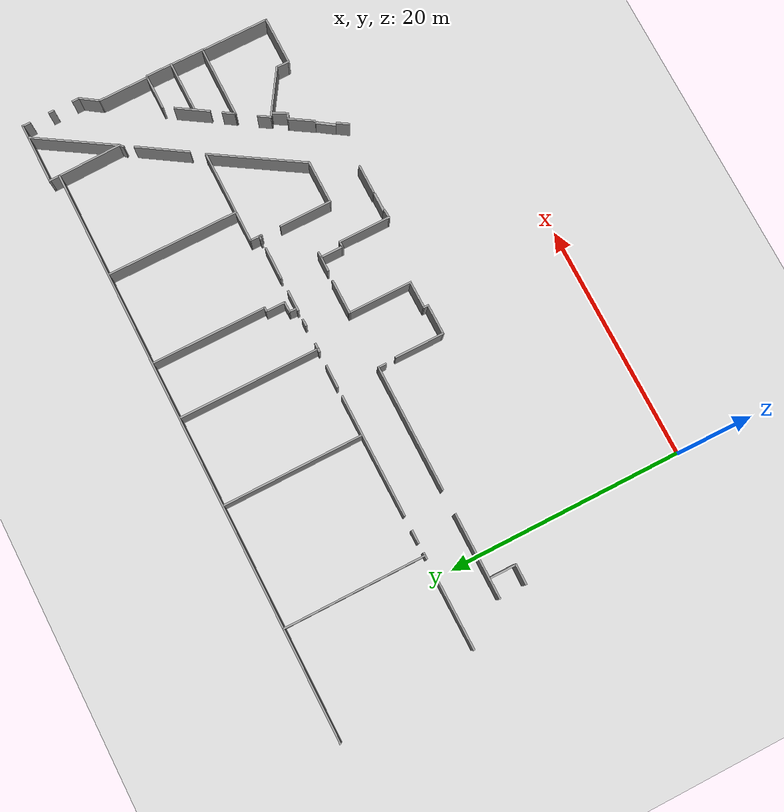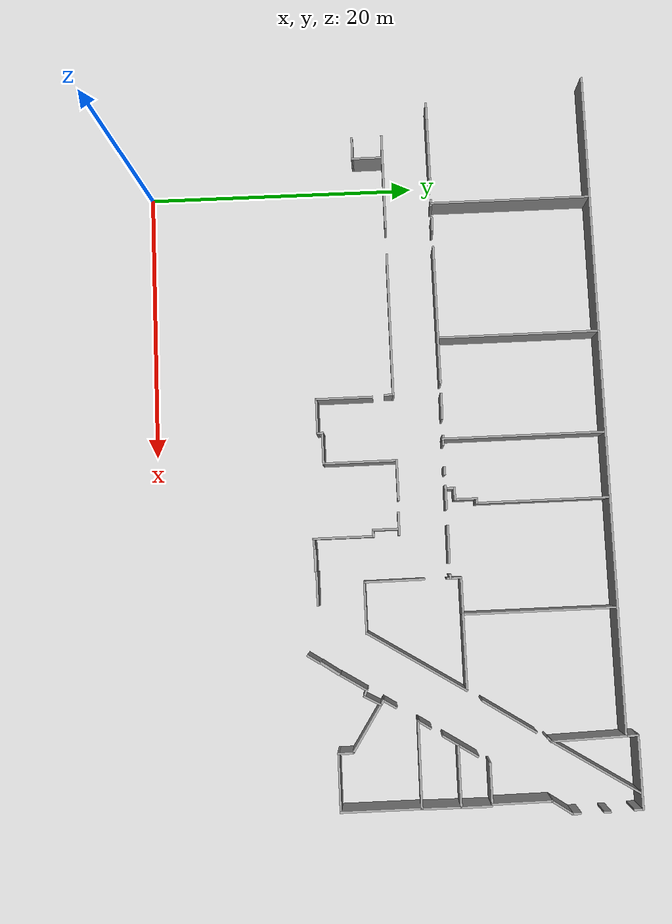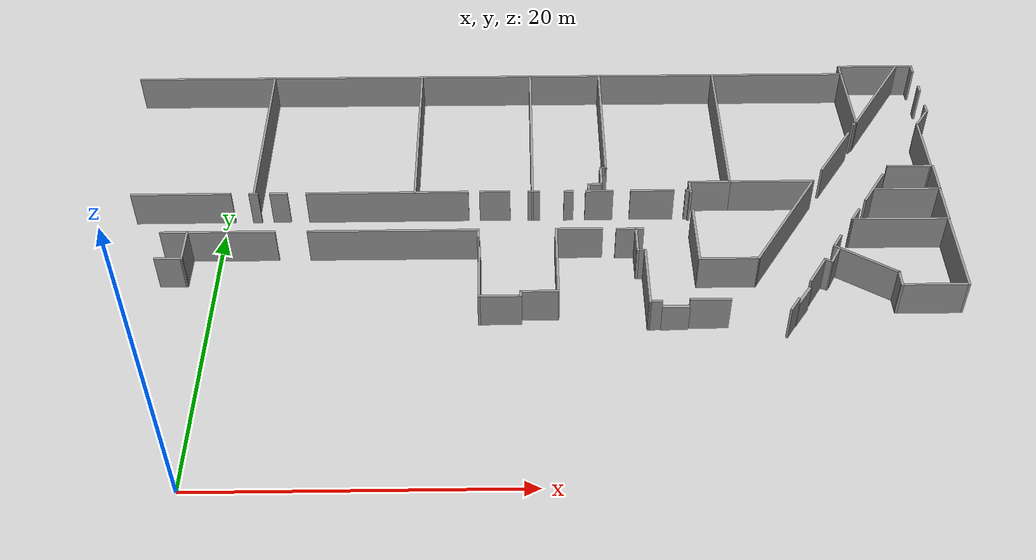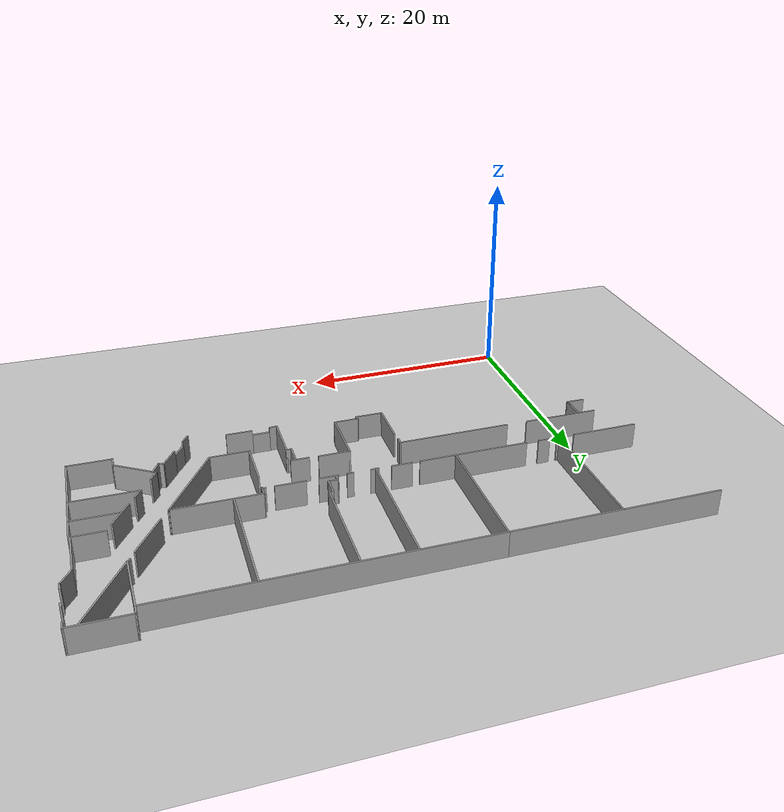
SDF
<sdf version="1.7">
 <world name="default">
  <model name="ground_plane">
   <static>1</static>
   <link name="link">
    <collision name="collision">
     <geometry><plane><normal>0 0 1</normal><size>100 100</size></plane></geometry>
     <surface><friction><ode><mu>100</mu><mu2>50</mu2></ode></friction></surface>
    </collision>
    <visual name="visual">
     <cast_shadows>0</cast_shadows>
     <geometry><plane><normal>0 0 1</normal><size>100 100</size></plane></geometry>
     <material>
      <script><uri>file://media/materials/scripts/gazebo.material</uri><name>Gazebo/Grey</name></script>
     </material>
    </visual>
   </link>
  </model>
  <model name="Hopper_Basement">
   <pose>6.01939 1.54901 0 0 -0 0</pose>
   <link name="Door_16">
    <collision name="Door_16_Collision">
     <geometry><box><size>1.6484 0.2 2</size></box></geometry>
     <pose>0 0 1 0 -0 0</pose>
    </collision>
    <visual name="Door_16_Visual">
     <pose>0 0 1 0 -0 0</pose>
     <geometry><box><size>1.6484 0.2 2</size></box></geometry>
     <material>
      <script><uri>file://media/materials/scripts/gazebo.material</uri><name>Gazebo/Grey</name></script>
     </material>
    </visual>
    <pose>29.9742 10.9349 0 0 -0 0.972827</pose>
   </link>
   <link name="Door_17">
    <collision name="Door_17_Collision">
     <geometry><box><size>1.67833 0.2 2</size></box></geometry>
     <pose>0 0 1 0 -0 0</pose>
    </collision>
    <visual name="Door_17_Visual">
     <pose>0 0 1 0 -0 0</pose>
     <geometry><box><size>1.67833 0.2 2</size></box></geometry>
     <material>
      <script><uri>file://media/materials/scripts/gazebo.material</uri><name>Gazebo/Grey</name></script>
     </material>
    </visual>
    <pose>22.2042 10.1557 0 0 -0 0</pose>
   </link>
   <link name="Wall_104">
    <collision name="Wall_104_Collision">
     <geometry><box><size>6.41785 0.15 2.5</size></box></geometry>
     <pose>0 0 1.25 0 -0 0</pose>
    </collision>
    <visual name="Wall_104_Visual">
     <pose>0 0 1.25 0 -0 0</pose>
     <geometry><box><size>6.41785 0.15 2.5</size></box></geometry>
     <material>
      <script><uri>file://media/materials/scripts/gazebo.material</uri><name>Gazebo/Grey</name></script>
      <ambient>1 1 1 1</ambient>
     </material>
     <meta><layer>0</layer></meta>
    </visual>
    <pose>-8.76549 19.8756 0 0 -0 0.004172</pose>
   </link>
   <link name="Wall_106">
    <collision name="Wall_106_Collision">
     <geometry><box><size>0.594672 0.15 2.5</size></box></geometry>
     <pose>0 0 1.25 0 -0 0</pose>
    </collision>
    <visual name="Wall_106_Visual">
     <pose>0 0 1.25 0 -0 0</pose>
     <geometry><box><size>0.594672 0.15 2.5</size></box></geometry>
     <material>
      <script><uri>file://media/materials/scripts/gazebo.material</uri><name>Gazebo/Grey</name></script>
      <ambient>1 1 1 1</ambient>
     </material>
     <meta><layer>0</layer></meta>
    </visual>
    <pose>-4.12784 19.8756 0 0 -0 -0.019605</pose>
   </link>
   <link name="Wall_108">
    <collision name="Wall_108_Collision">
     <geometry><box><size>1.14382 0.15 2.5</size></box></geometry>
     <pose>0 0 1.25 0 -0 0</pose>
    </collision>
    <visual name="Wall_108_Visual">
     <pose>0 0 1.25 0 -0 0</pose>
     <geometry><box><size>1.14382 0.15 2.5</size></box></geometry>
     <material>
      <script><uri>file://media/materials/scripts/gazebo.material</uri><name>Gazebo/Grey</name></script>
      <ambient>1 1 1 1</ambient>
     </material>
     <meta><layer>0</layer></meta>
    </visual>
    <pose>-2.51949 19.8799 0 0 -0 0</pose>
   </link>
   <link name="Wall_111">
    <collision name="Wall_111_Collision">
     <geometry><box><size>10.4156 0.15 2.5</size></box></geometry>
     <pose>0 0 1.25 0 -0 0</pose>
    </collision>
    <visual name="Wall_111_Visual">
     <pose>0 0 1.25 0 -0 0</pose>
     <geometry><box><size>10.4156 0.15 2.5</size></box></geometry>
     <material>
      <script><uri>file://media/materials/scripts/gazebo.material</uri><name>Gazebo/Grey</name></script>
      <ambient>1 1 1 1</ambient>
     </material>
     <meta><layer>0</layer></meta>
    </visual>
    <pose>4.43559 19.8813 0 0 -0 0.00293</pose>
   </link>
   <link name="Wall_113">
    <collision name="Wall_113_Collision">
     <geometry><box><size>1.97466 0.15 2.5</size></box></geometry>
     <pose>0 0 1.25 0 -0 0</pose>
    </collision>
    <visual name="Wall_113_Visual">
     <pose>0 0 1.25 0 -0 0</pose>
     <geometry><box><size>1.97466 0.15 2.5</size></box></geometry>
     <material>
      <script><uri>file://media/materials/scripts/gazebo.material</uri><name>Gazebo/Grey</name></script>
      <ambient>1 1 1 1</ambient>
     </material>
     <meta><layer>0</layer></meta>
    </visual>
    <pose>11.3328 19.8964 0 0 -0 -0.010989</pose>
   </link>
   <link name="Wall_115">
    <collision name="Wall_115_Collision">
     <geometry><box><size>0.781654 0.15 2.5</size></box></geometry>
     <pose>0 0 1.25 0 -0 0</pose>
    </collision>
    <visual name="Wall_115_Visual">
     <pose>0 0 1.25 0 -0 0</pose>
     <geometry><box><size>0.781654 0.15 2.5</size></box></geometry>
     <material>
      <script><uri>file://media/materials/scripts/gazebo.material</uri><name>Gazebo/Grey</name></script>
      <ambient>1 1 1 1</ambient>
     </material>
     <meta><layer>0</layer></meta>
    </visual>
    <pose>13.8541 19.8813 0 0 -0 -0.015872</pose>
   </link>
   <link name="Wall_117">
    <collision name="Wall_117_Collision">
     <geometry><box><size>0.621174 0.15 2.5</size></box></geometry>
     <pose>0 0 1.25 0 -0 0</pose>
    </collision>
    <visual name="Wall_117_Visual">
     <pose>0 0 1.25 0 -0 0</pose>
     <geometry><box><size>0.621174 0.15 2.5</size></box></geometry>
     <material>
      <script><uri>file://media/materials/scripts/gazebo.material</uri><name>Gazebo/Grey</name></script>
      <ambient>1 1 1 1</ambient>
     </material>
     <meta><layer>0</layer></meta>
    </visual>
    <pose>16.0896 19.8713 0 0 -0 0.021273</pose>
   </link>
   <link name="Wall_119">
    <collision name="Wall_119_Collision">
     <geometry><box><size>1.7941 0.15 2.5</size></box></geometry>
     <pose>0 0 1.25 0 -0 0</pose>
    </collision>
    <visual name="Wall_119_Visual">
     <pose>0 0 1.25 0 -0 0</pose>
     <geometry><box><size>1.7941 0.15 2.5</size></box></geometry>
     <material>
      <script><uri>file://media/materials/scripts/gazebo.material</uri><name>Gazebo/Grey</name></script>
      <ambient>1 1 1 1</ambient>
     </material>
     <meta><layer>0</layer></meta>
    </visual>
    <pose>18.0495 19.8763 0 0 -0 0</pose>
   </link>
   <link name="Wall_121">
    <collision name="Wall_121_Collision">
     <geometry><box><size>2.81672 0.15 2.5</size></box></geometry>
     <pose>0 0 1.25 0 -0 0</pose>
    </collision>
    <visual name="Wall_121_Visual">
     <pose>0 0 1.25 0 -0 0</pose>
     <geometry><box><size>2.81672 0.15 2.5</size></box></geometry>
     <material>
      <script><uri>file://media/materials/scripts/gazebo.material</uri><name>Gazebo/Grey</name></script>
      <ambient>1 1 1 1</ambient>
     </material>
     <meta><layer>0</layer></meta>
    </visual>
    <pose>21.458 19.8863 0 0 -0 -0.007519</pose>
   </link>
   <link name="Wall_123">
    <collision name="Wall_123_Collision">
     <geometry><box><size>0.3906 0.15 2.5</size></box></geometry>
     <pose>0 0 1.25 0 -0 0</pose>
    </collision>
    <visual name="Wall_123_Visual">
     <pose>0 0 1.25 0 -0 0</pose>
     <geometry><box><size>0.3906 0.15 2.5</size></box></geometry>
     <material>
      <script><uri>file://media/materials/scripts/gazebo.material</uri><name>Gazebo/Grey</name></script>
      <ambient>1 1 1 1</ambient>
     </material>
     <meta><layer>0</layer></meta>
    </visual>
    <pose>23.7838 19.8863 0 0 -0 0</pose>
   </link>
   <link name="Wall_124">
    <collision name="Wall_124_Collision">
     <geometry><box><size>0.3104 0.15 2.5</size></box></geometry>
     <pose>0 0 1.25 0 -0 0</pose>
    </collision>
    <visual name="Wall_124_Visual">
     <pose>0 0 1.25 0 -0 0</pose>
     <geometry><box><size>0.3104 0.15 2.5</size></box></geometry>
     <material>
      <script><uri>file://media/materials/scripts/gazebo.material</uri><name>Gazebo/Grey</name></script>
      <ambient>1 1 1 1</ambient>
     </material>
     <meta><layer>0</layer></meta>
    </visual>
    <pose>23.9091 19.8061 0 0 -0 -1.50838</pose>
   </link>
   <link name="Wall_126">
    <collision name="Wall_126_Collision">
     <geometry><box><size>4.50086 0.15 2.5</size></box></geometry>
     <pose>0 0 1.25 0 -0 0</pose>
    </collision>
    <visual name="Wall_126_Visual">
     <pose>0 0 1.25 0 -0 0</pose>
     <geometry><box><size>4.50086 0.15 2.5</size></box></geometry>
     <material>
      <script><uri>file://media/materials/scripts/gazebo.material</uri><name>Gazebo/Grey</name></script>
      <ambient>1 1 1 1</ambient>
     </material>
     <meta><layer>0</layer></meta>
    </visual>
    <pose>23.8941 15.8363 0 0 -0 -1.56619</pose>
   </link>
   <link name="Wall_127">
    <collision name="Wall_127_Collision">
     <geometry><box><size>3.77906 0.15 2.5</size></box></geometry>
     <pose>0 0 1.25 0 -0 0</pose>
    </collision>
    <visual name="Wall_127_Visual">
     <pose>0 0 1.25 0 -0 0</pose>
     <geometry><box><size>3.77906 0.15 2.5</size></box></geometry>
     <material>
      <script><uri>file://media/materials/scripts/gazebo.material</uri><name>Gazebo/Grey</name></script>
      <ambient>1 1 1 1</ambient>
     </material>
     <meta><layer>0</layer></meta>
    </visual>
    <pose>25.7186 13.6658 0 0 -0 0.002762</pose>
   </link>
   <link name="Wall_129">
    <collision name="Wall_129_Collision">
     <geometry><box><size>1.13114 0.15 2.5</size></box></geometry>
     <pose>0 0 1.25 0 -0 0</pose>
    </collision>
    <visual name="Wall_129_Visual">
     <pose>0 0 1.25 0 -0 0</pose>
     <geometry><box><size>1.13114 0.15 2.5</size></box></geometry>
     <material>
      <script><uri>file://media/materials/scripts/gazebo.material</uri><name>Gazebo/Grey</name></script>
      <ambient>1 1 1 1</ambient>
     </material>
     <meta><layer>0</layer></meta>
    </visual>
    <pose>29.2187 9.80355 0 0 -0 -2.14587</pose>
   </link>
   <link name="Wall_261">
    <collision name="Wall_261_Collision">
     <geometry><box><size>1.76121 0.15 2.5</size></box></geometry>
     <pose>0 0 1.25 0 -0 0</pose>
    </collision>
    <visual name="Wall_261_Visual">
     <pose>0 0 1.25 0 -0 0</pose>
     <geometry><box><size>1.76121 0.15 2.5</size></box></geometry>
     <material>
      <script><uri>file://media/materials/scripts/gazebo.material</uri><name>Gazebo/Grey</name></script>
      <ambient>1 1 1 1</ambient>
     </material>
     <meta><layer>0</layer></meta>
    </visual>
    <pose>-8.61959 14.1075 0 0 -0 -0.012658</pose>
   </link>
   <link name="Wall_262">
    <collision name="Wall_262_Collision">
     <geometry><box><size>2.39338 0.15 2.5</size></box></geometry>
     <pose>0 0 1.25 0 -0 0</pose>
    </collision>
    <visual name="Wall_262_Visual">
     <pose>0 0 1.25 0 -0 0</pose>
     <geometry><box><size>2.39338 0.15 2.5</size></box></geometry>
     <material>
      <script><uri>file://media/materials/scripts/gazebo.material</uri><name>Gazebo/Grey</name></script>
      <ambient>1 1 1 1</ambient>
     </material>
     <meta><layer>0</layer></meta>
    </visual>
    <pose>-7.81404 15.219 0 0 -0 1.5708</pose>
   </link>
   <link name="Wall_280">
    <collision name="Wall_280_Collision">
     <geometry><box><size>19.75 0.15 2.5</size></box></geometry>
     <pose>0 0 1.25 0 -0 0</pose>
    </collision>
    <visual name="Wall_280_Visual">
     <pose>0 0 1.25 0 -0 0</pose>
     <geometry><box><size>19.75 0.15 2.5</size></box></geometry>
     <material>
      <script><uri>file://media/materials/scripts/gazebo.material</uri><name>Gazebo/Grey</name></script>
      <ambient>1 1 1 1</ambient>
     </material>
     <meta><layer>0</layer></meta>
    </visual>
    <pose>-3.58787 31.8107 0 0 -0 0</pose>
   </link>
   <link name="Wall_283">
    <collision name="Wall_283_Collision">
     <geometry><box><size>12.0237 0.15 2.5</size></box></geometry>
     <pose>0 0 1.25 0 -0 0</pose>
    </collision>
    <visual name="Wall_283_Visual">
     <pose>0 0 1.25 0 -0 0</pose>
     <geometry><box><size>12.0237 0.15 2.5</size></box></geometry>
     <material>
      <script><uri>file://media/materials/scripts/gazebo.material</uri><name>Gazebo/Grey</name></script>
      <ambient>1 1 1 1</ambient>
     </material>
     <meta><layer>0</layer></meta>
    </visual>
    <pose>-4.08396 25.8503 0 0 -0 -1.5708</pose>
   </link>
   <link name="Wall_285">
    <collision name="Wall_285_Collision">
     <geometry><box><size>12.0472 0.15 2.5</size></box></geometry>
     <pose>0 0 1.25 0 -0 0</pose>
    </collision>
    <visual name="Wall_285_Visual">
     <pose>0 0 1.25 0 -0 0</pose>
     <geometry><box><size>12.0472 0.15 2.5</size></box></geometry>
     <material>
      <script><uri>file://media/materials/scripts/gazebo.material</uri><name>Gazebo/Grey</name></script>
      <ambient>1 1 1 1</ambient>
     </material>
     <meta><layer>0</layer></meta>
    </visual>
    <pose>6.2145 25.862 0 0 -0 1.57119</pose>
   </link>
   <link name="Wall_287">
    <collision name="Wall_287_Collision">
     <geometry><box><size>29.5 0.15 2.5</size></box></geometry>
     <pose>0 0 1.25 0 -0 0</pose>
    </collision>
    <visual name="Wall_287_Visual">
     <pose>0 0 1.25 0 -0 0</pose>
     <geometry><box><size>29.5 0.15 2.5</size></box></geometry>
     <material>
      <script><uri>file://media/materials/scripts/gazebo.material</uri><name>Gazebo/Grey</name></script>
      <ambient>1 1 1 1</ambient>
     </material>
     <meta><layer>0</layer></meta>
    </visual>
    <pose>20.8871 31.8107 0 0 -0 0</pose>
   </link>
   <link name="Wall_288">
    <collision name="Wall_288_Collision">
     <geometry><box><size>1 0.15 2.5</size></box></geometry>
     <pose>0 0 1.25 0 -0 0</pose>
    </collision>
    <visual name="Wall_288_Visual">
     <pose>0 0 1.25 0 -0 0</pose>
     <geometry><box><size>1 0.15 2.5</size></box></geometry>
     <material>
      <script><uri>file://media/materials/scripts/gazebo.material</uri><name>Gazebo/Grey</name></script>
      <ambient>1 1 1 1</ambient>
     </material>
     <meta><layer>0</layer></meta>
    </visual>
    <pose>35.5621 32.2357 0 0 -0 1.5708</pose>
   </link>
   <link name="Wall_289">
    <collision name="Wall_289_Collision">
     <geometry><box><size>5.25 0.15 2.5</size></box></geometry>
     <pose>0 0 1.25 0 -0 0</pose>
    </collision>
    <visual name="Wall_289_Visual">
     <pose>0 0 1.25 0 -0 0</pose>
     <geometry><box><size>5.25 0.15 2.5</size></box></geometry>
     <material>
      <script><uri>file://media/materials/scripts/gazebo.material</uri><name>Gazebo/Grey</name></script>
      <ambient>1 1 1 1</ambient>
     </material>
     <meta><layer>0</layer></meta>
    </visual>
    <pose>38.1121 32.6607 0 0 -0 0</pose>
   </link>
   <link name="Wall_290">
    <collision name="Wall_290_Collision">
     <geometry><box><size>0.75 0.15 2.5</size></box></geometry>
     <pose>0 0 1.25 0 -0 0</pose>
    </collision>
    <visual name="Wall_290_Visual">
     <pose>0 0 1.25 0 -0 0</pose>
     <geometry><box><size>0.75 0.15 2.5</size></box></geometry>
     <material>
      <script><uri>file://media/materials/scripts/gazebo.material</uri><name>Gazebo/Grey</name></script>
      <ambient>1 1 1 1</ambient>
     </material>
     <meta><layer>0</layer></meta>
    </visual>
    <pose>40.6621 32.3607 0 0 -0 -1.5708</pose>
   </link>
   <link name="Wall_292">
    <collision name="Wall_292_Collision">
     <geometry><box><size>12.0546 0.15 2.5</size></box></geometry>
     <pose>0 0 1.25 0 -0 0</pose>
    </collision>
    <visual name="Wall_292_Visual">
     <pose>0 0 1.25 0 -0 0</pose>
     <geometry><box><size>12.0546 0.15 2.5</size></box></geometry>
     <material>
      <script><uri>file://media/materials/scripts/gazebo.material</uri><name>Gazebo/Grey</name></script>
      <ambient>1 1 1 1</ambient>
     </material>
     <meta><layer>0</layer></meta>
    </visual>
    <pose>13.76 25.804 0 0 -0 -1.5708</pose>
   </link>
   <link name="Wall_294">
    <collision name="Wall_294_Collision">
     <geometry><box><size>0.749793 0.15 2.5</size></box></geometry>
     <pose>0 0 1.25 0 -0 0</pose>
    </collision>
    <visual name="Wall_294_Visual">
     <pose>0 0 1.25 0 -0 0</pose>
     <geometry><box><size>0.749793 0.15 2.5</size></box></geometry>
     <material>
      <script><uri>file://media/materials/scripts/gazebo.material</uri><name>Gazebo/Grey</name></script>
      <ambient>1 1 1 1</ambient>
     </material>
     <meta><layer>0</layer></meta>
    </visual>
    <pose>17.3938 20.2118 0 0 -0 1.54139</pose>
   </link>
   <link name="Wall_295">
    <collision name="Wall_295_Collision">
     <geometry><box><size>0.978954 0.15 2.5</size></box></geometry>
     <pose>0 0 1.25 0 -0 0</pose>
    </collision>
    <visual name="Wall_295_Visual">
     <pose>0 0 1.25 0 -0 0</pose>
     <geometry><box><size>0.978954 0.15 2.5</size></box></geometry>
     <material>
      <script><uri>file://media/materials/scripts/gazebo.material</uri><name>Gazebo/Grey</name></script>
      <ambient>1 1 1 1</ambient>
     </material>
     <meta><layer>0</layer></meta>
    </visual>
    <pose>17.817 20.5203 0 0 -0 0.021273</pose>
   </link>
   <link name="Wall_296">
    <collision name="Wall_296_Collision">
     <geometry><box><size>1.71937 0.15 2.5</size></box></geometry>
     <pose>0 0 1.25 0 -0 0</pose>
    </collision>
    <visual name="Wall_296_Visual">
     <pose>0 0 1.25 0 -0 0</pose>
     <geometry><box><size>1.71937 0.15 2.5</size></box></geometry>
     <material>
      <script><uri>file://media/materials/scripts/gazebo.material</uri><name>Gazebo/Grey</name></script>
      <ambient>1 1 1 1</ambient>
     </material>
     <meta><layer>0</layer></meta>
    </visual>
    <pose>18.2313 21.3138 0 0 -0 1.5708</pose>
   </link>
   <link name="Wall_297">
    <collision name="Wall_297_Collision">
     <geometry><box><size>0.485033 0.15 2.5</size></box></geometry>
     <pose>0 0 1.25 0 -0 0</pose>
    </collision>
    <visual name="Wall_297_Visual">
     <pose>0 0 1.25 0 -0 0</pose>
     <geometry><box><size>0.485033 0.15 2.5</size></box></geometry>
     <material>
      <script><uri>file://media/materials/scripts/gazebo.material</uri><name>Gazebo/Grey</name></script>
      <ambient>1 1 1 1</ambient>
     </material>
     <meta><layer>0</layer></meta>
    </visual>
    <pose>18.3989 22.0985 0 0 -0 0</pose>
   </link>
   <link name="Wall_299">
    <collision name="Wall_299_Collision">
     <geometry><box><size>9.75 0.15 2.5</size></box></geometry>
     <pose>0 0 1.25 0 -0 0</pose>
    </collision>
    <visual name="Wall_299_Visual">
     <pose>0 0 1.25 0 -0 0</pose>
     <geometry><box><size>9.75 0.15 2.5</size></box></geometry>
     <material>
      <script><uri>file://media/materials/scripts/gazebo.material</uri><name>Gazebo/Grey</name></script>
      <ambient>1 1 1 1</ambient>
     </material>
     <meta><layer>0</layer></meta>
    </visual>
    <pose>18.5664 26.8985 0 0 -0 1.5708</pose>
   </link>
   <link name="Wall_301">
    <collision name="Wall_301_Collision">
     <geometry><box><size>11.25 0.15 2.5</size></box></geometry>
     <pose>0 0 1.25 0 -0 0</pose>
    </collision>
    <visual name="Wall_301_Visual">
     <pose>0 0 1.25 0 -0 0</pose>
     <geometry><box><size>11.25 0.15 2.5</size></box></geometry>
     <material>
      <script><uri>file://media/materials/scripts/gazebo.material</uri><name>Gazebo/Grey</name></script>
      <ambient>1 1 1 1</ambient>
     </material>
     <meta><layer>0</layer></meta>
    </visual>
    <pose>26.5074 26.2159 0 0 -0 -1.5708</pose>
   </link>
   <link name="Wall_302">
    <collision name="Wall_302_Collision">
     <geometry><box><size>2.75 0.15 2.5</size></box></geometry>
     <pose>0 0 1.25 0 -0 0</pose>
    </collision>
    <visual name="Wall_302_Visual">
     <pose>0 0 1.25 0 -0 0</pose>
     <geometry><box><size>2.75 0.15 2.5</size></box></geometry>
     <material>
      <script><uri>file://media/materials/scripts/gazebo.material</uri><name>Gazebo/Grey</name></script>
      <ambient>1 1 1 1</ambient>
     </material>
     <meta><layer>0</layer></meta>
    </visual>
    <pose>25.2074 20.6659 0 0 -0 3.14159</pose>
   </link>
   <link name="Wall_303">
    <collision name="Wall_303_Collision">
     <geometry><box><size>0.929584 0.15 2.5</size></box></geometry>
     <pose>0 0 1.25 0 -0 0</pose>
    </collision>
    <visual name="Wall_303_Visual">
     <pose>0 0 1.25 0 -0 0</pose>
     <geometry><box><size>0.929584 0.15 2.5</size></box></geometry>
     <material>
      <script><uri>file://media/materials/scripts/gazebo.material</uri><name>Gazebo/Grey</name></script>
      <ambient>1 1 1 1</ambient>
     </material>
     <meta><layer>0</layer></meta>
    </visual>
    <pose>23.9057 20.2761 0 0 -0 -1.57498</pose>
   </link>
   <link name="Wall_305">
    <collision name="Wall_305_Collision">
     <geometry><box><size>5.5 0.15 2.5</size></box></geometry>
     <pose>0 0 1.25 0 -0 0</pose>
    </collision>
    <visual name="Wall_305_Visual">
     <pose>0 0 1.25 0 -0 0</pose>
     <geometry><box><size>5.5 0.15 2.5</size></box></geometry>
     <material>
      <script><uri>file://media/materials/scripts/gazebo.material</uri><name>Gazebo/Grey</name></script>
      <ambient>1 1 1 1</ambient>
     </material>
     <meta><layer>0</layer></meta>
    </visual>
    <pose>29.1824 20.6659 0 0 -0 0</pose>
   </link>
   <link name="Wall_307">
    <collision name="Wall_307_Collision">
     <geometry><box><size>4.51674 0.15 2.5</size></box></geometry>
     <pose>0 0 1.25 0 -0 0</pose>
    </collision>
    <visual name="Wall_307_Visual">
     <pose>0 0 1.25 0 -0 0</pose>
     <geometry><box><size>4.51674 0.15 2.5</size></box></geometry>
     <material>
      <script><uri>file://media/materials/scripts/gazebo.material</uri><name>Gazebo/Grey</name></script>
      <ambient>1 1 1 1</ambient>
     </material>
     <meta><layer>0</layer></meta>
    </visual>
    <pose>33.8555 23.5998 0 0 -0 0.999828</pose>
   </link>
   <link name="Wall_309">
    <collision name="Wall_309_Collision">
     <geometry><box><size>0.453412 0.15 2.5</size></box></geometry>
     <pose>0 0 1.25 0 -0 0</pose>
    </collision>
    <visual name="Wall_309_Visual">
     <pose>0 0 1.25 0 -0 0</pose>
     <geometry><box><size>0.453412 0.15 2.5</size></box></geometry>
     <material>
      <script><uri>file://media/materials/scripts/gazebo.material</uri><name>Gazebo/Grey</name></script>
      <ambient>1 1 1 1</ambient>
     </material>
     <meta><layer>0</layer></meta>
    </visual>
    <pose>35.5987 26.3755 0 0 -0 0.785398</pose>
   </link>
   <link name="Wall_310">
    <collision name="Wall_310_Collision">
     <geometry><box><size>5.47983 0.15 2.5</size></box></geometry>
     <pose>0 0 1.25 0 -0 0</pose>
    </collision>
    <visual name="Wall_310_Visual">
     <pose>0 0 1.25 0 -0 0</pose>
     <geometry><box><size>5.47983 0.15 2.5</size></box></geometry>
     <material>
      <script><uri>file://media/materials/scripts/gazebo.material</uri><name>Gazebo/Grey</name></script>
      <ambient>1 1 1 1</ambient>
     </material>
     <meta><layer>0</layer></meta>
    </visual>
    <pose>35.6341 29.1467 0 0 -0 1.59779</pose>
   </link>
   <link name="Wall_312">
    <collision name="Wall_312_Collision">
     <geometry><box><size>8.39462 0.15 2.5</size></box></geometry>
     <pose>0 0 1.25 0 -0 0</pose>
    </collision>
    <visual name="Wall_312_Visual">
     <pose>0 0 1.25 0 -0 0</pose>
     <geometry><box><size>8.39462 0.15 2.5</size></box></geometry>
     <material>
      <script><uri>file://media/materials/scripts/gazebo.material</uri><name>Gazebo/Grey</name></script>
      <ambient>1 1 1 1</ambient>
     </material>
     <meta><layer>0</layer></meta>
    </visual>
    <pose>29.7176 17.1668 0 0 -0 1.01232</pose>
   </link>
   <link name="Wall_314">
    <collision name="Wall_314_Collision">
     <geometry><box><size>7.37349 0.15 2.5</size></box></geometry>
     <pose>0 0 1.25 0 -0 0</pose>
    </collision>
    <visual name="Wall_314_Visual">
     <pose>0 0 1.25 0 -0 0</pose>
     <geometry><box><size>7.37349 0.15 2.5</size></box></geometry>
     <material>
      <script><uri>file://media/materials/scripts/gazebo.material</uri><name>Gazebo/Grey</name></script>
      <ambient>1 1 1 1</ambient>
     </material>
     <meta><layer>0</layer></meta>
    </visual>
    <pose>37.6282 29.5405 0 0 -0 1.00957</pose>
   </link>
   <link name="Wall_316">
    <collision name="Wall_316_Collision">
     <geometry><box><size>0.518 0.15 2.5</size></box></geometry>
     <pose>0 0 1.25 0 -0 0</pose>
    </collision>
    <visual name="Wall_316_Visual">
     <pose>0 0 1.25 0 -0 0</pose>
     <geometry><box><size>0.518 0.15 2.5</size></box></geometry>
     <material>
      <script><uri>file://media/materials/scripts/gazebo.material</uri><name>Gazebo/Grey</name></script>
      <ambient>1 1 1 1</ambient>
     </material>
     <meta><layer>0</layer></meta>
    </visual>
    <pose>40.7286 30.13 0 0 -0 -1.5708</pose>
   </link>
   <link name="Wall_318">
    <collision name="Wall_318_Collision">
     <geometry><box><size>0.702213 0.15 2.5</size></box></geometry>
     <pose>0 0 1.25 0 -0 0</pose>
    </collision>
    <visual name="Wall_318_Visual">
     <pose>0 0 1.25 0 -0 0</pose>
     <geometry><box><size>0.702213 0.15 2.5</size></box></geometry>
     <material>
      <script><uri>file://media/materials/scripts/gazebo.material</uri><name>Gazebo/Grey</name></script>
      <ambient>1 1 1 1</ambient>
     </material>
     <meta><layer>0</layer></meta>
    </visual>
    <pose>40.7439 27.9374 0 0 -0 -1.5708</pose>
   </link>
   <link name="Wall_319">
    <collision name="Wall_319_Collision">
     <geometry><box><size>1.79582 0.15 2.5</size></box></geometry>
     <pose>0 0 1.25 0 -0 0</pose>
    </collision>
    <visual name="Wall_319_Visual">
     <pose>0 0 1.25 0 -0 0</pose>
     <geometry><box><size>1.79582 0.15 2.5</size></box></geometry>
     <material>
      <script><uri>file://media/materials/scripts/gazebo.material</uri><name>Gazebo/Grey</name></script>
      <ambient>1 1 1 1</ambient>
     </material>
     <meta><layer>0</layer></meta>
    </visual>
    <pose>40.2839 26.979 0 0 -0 -2.16397</pose>
   </link>
   <link name="Wall_321">
    <collision name="Wall_321_Collision">
     <geometry><box><size>4.36669 0.15 2.5</size></box></geometry>
     <pose>0 0 1.25 0 -0 0</pose>
    </collision>
    <visual name="Wall_321_Visual">
     <pose>0 0 1.25 0 -0 0</pose>
     <geometry><box><size>4.36669 0.15 2.5</size></box></geometry>
     <material>
      <script><uri>file://media/materials/scripts/gazebo.material</uri><name>Gazebo/Grey</name></script>
      <ambient>1 1 1 1</ambient>
     </material>
     <meta><layer>0</layer></meta>
    </visual>
    <pose>39.8239 24.1424 0 0 -0 -1.56352</pose>
   </link>
   <link name="Wall_322">
    <collision name="Wall_322_Collision">
     <geometry><box><size>2.95617 0.15 2.5</size></box></geometry>
     <pose>0 0 1.25 0 -0 0</pose>
    </collision>
    <visual name="Wall_322_Visual">
     <pose>0 0 1.25 0 -0 0</pose>
     <geometry><box><size>2.95617 0.15 2.5</size></box></geometry>
     <material>
      <script><uri>file://media/materials/scripts/gazebo.material</uri><name>Gazebo/Grey</name></script>
      <ambient>1 1 1 1</ambient>
     </material>
     <meta><layer>0</layer></meta>
    </visual>
    <pose>38.4362 22.034 0 0 -0 3.14159</pose>
   </link>
   <link name="Wall_324">
    <collision name="Wall_324_Collision">
     <geometry><box><size>2.94891 0.15 2.5</size></box></geometry>
     <pose>0 0 1.25 0 -0 0</pose>
    </collision>
    <visual name="Wall_324_Visual">
     <pose>0 0 1.25 0 -0 0</pose>
     <geometry><box><size>2.94891 0.15 2.5</size></box></geometry>
     <material>
      <script><uri>file://media/materials/scripts/gazebo.material</uri><name>Gazebo/Grey</name></script>
      <ambient>1 1 1 1</ambient>
     </material>
     <meta><layer>0</layer></meta>
    </visual>
    <pose>35.7606 20.01 0 0 -0 -2.13753</pose>
   </link>
   <link name="Wall_326">
    <collision name="Wall_326_Collision">
     <geometry><box><size>4.336 0.15 2.5</size></box></geometry>
     <pose>0 0 1.25 0 -0 0</pose>
    </collision>
    <visual name="Wall_326_Visual">
     <pose>0 0 1.25 0 -0 0</pose>
     <geometry><box><size>4.336 0.15 2.5</size></box></geometry>
     <material>
      <script><uri>file://media/materials/scripts/gazebo.material</uri><name>Gazebo/Grey</name></script>
      <ambient>1 1 1 1</ambient>
     </material>
     <meta><layer>0</layer></meta>
    </visual>
    <pose>37.8689 19.8414 0 0 -0 0</pose>
   </link>
   <link name="Wall_327">
    <collision name="Wall_327_Collision">
     <geometry><box><size>2.312 0.15 2.5</size></box></geometry>
     <pose>0 0 1.25 0 -0 0</pose>
    </collision>
    <visual name="Wall_327_Visual">
     <pose>0 0 1.25 0 -0 0</pose>
     <geometry><box><size>2.312 0.15 2.5</size></box></geometry>
     <material>
      <script><uri>file://media/materials/scripts/gazebo.material</uri><name>Gazebo/Grey</name></script>
      <ambient>1 1 1 1</ambient>
     </material>
     <meta><layer>0</layer></meta>
    </visual>
    <pose>39.9619 20.9224 0 0 -0 1.5708</pose>
   </link>
   <link name="Wall_329">
    <collision name="Wall_329_Collision">
     <geometry><box><size>1.14961 0.15 2.5</size></box></geometry>
     <pose>0 0 1.25 0 -0 0</pose>
    </collision>
    <visual name="Wall_329_Visual">
     <pose>0 0 1.25 0 -0 0</pose>
     <geometry><box><size>1.14961 0.15 2.5</size></box></geometry>
     <material>
      <script><uri>file://media/materials/scripts/gazebo.material</uri><name>Gazebo/Grey</name></script>
      <ambient>1 1 1 1</ambient>
     </material>
     <meta><layer>0</layer></meta>
    </visual>
    <pose>34.1429 17.503 0 0 -0 -2.13753</pose>
   </link>
   <link name="Wall_330">
    <collision name="Wall_330_Collision">
     <geometry><box><size>6.20674 0.15 2.5</size></box></geometry>
     <pose>0 0 1.25 0 -0 0</pose>
    </collision>
    <visual name="Wall_330_Visual">
     <pose>0 0 1.25 0 -0 0</pose>
     <geometry><box><size>6.20674 0.15 2.5</size></box></geometry>
     <material>
      <script><uri>file://media/materials/scripts/gazebo.material</uri><name>Gazebo/Grey</name></script>
      <ambient>1 1 1 1</ambient>
     </material>
     <meta><layer>0</layer></meta>
    </visual>
    <pose>36.9029 17.066 0 0 -0 -0.005063</pose>
   </link>
   <link name="Wall_331">
    <collision name="Wall_331_Collision">
     <geometry><box><size>2.87933 0.15 2.5</size></box></geometry>
     <pose>0 0 1.25 0 -0 0</pose>
    </collision>
    <visual name="Wall_331_Visual">
     <pose>0 0 1.25 0 -0 0</pose>
     <geometry><box><size>2.87933 0.15 2.5</size></box></geometry>
     <material>
      <script><uri>file://media/materials/scripts/gazebo.material</uri><name>Gazebo/Grey</name></script>
      <ambient>1 1 1 1</ambient>
     </material>
     <meta><layer>0</layer></meta>
    </visual>
    <pose>39.9389 18.4154 0 0 -0 1.56518</pose>
   </link>
   <link name="Wall_333">
    <collision name="Wall_333_Collision">
     <geometry><box><size>1.16596 0.15 2.5</size></box></geometry>
     <pose>0 0 1.25 0 -0 0</pose>
    </collision>
    <visual name="Wall_333_Visual">
     <pose>0 0 1.25 0 -0 0</pose>
     <geometry><box><size>1.16596 0.15 2.5</size></box></geometry>
     <material>
      <script><uri>file://media/materials/scripts/gazebo.material</uri><name>Gazebo/Grey</name></script>
      <ambient>1 1 1 1</ambient>
     </material>
     <meta><layer>0</layer></meta>
    </visual>
    <pose>32.5978 15.1143 0 0 -0 -2.12696</pose>
   </link>
   <link name="Wall_334">
    <collision name="Wall_334_Collision">
     <geometry><box><size>4.3802 0.15 2.5</size></box></geometry>
     <pose>0 0 1.25 0 -0 0</pose>
    </collision>
    <visual name="Wall_334_Visual">
     <pose>0 0 1.25 0 -0 0</pose>
     <geometry><box><size>4.3802 0.15 2.5</size></box></geometry>
     <material>
      <script><uri>file://media/materials/scripts/gazebo.material</uri><name>Gazebo/Grey</name></script>
      <ambient>1 1 1 1</ambient>
     </material>
     <meta><layer>0</layer></meta>
    </visual>
    <pose>34.1019 13.5285 0 0 -0 -0.5773</pose>
   </link>
   <link name="Wall_335">
    <collision name="Wall_335_Collision">
     <geometry><box><size>1.1994 0.15 2.5</size></box></geometry>
     <pose>0 0 1.25 0 -0 0</pose>
    </collision>
    <visual name="Wall_335_Visual">
     <pose>0 0 1.25 0 -0 0</pose>
     <geometry><box><size>1.1994 0.15 2.5</size></box></geometry>
     <material>
      <script><uri>file://media/materials/scripts/gazebo.material</uri><name>Gazebo/Grey</name></script>
      <ambient>1 1 1 1</ambient>
     </material>
     <meta><layer>0</layer></meta>
    </visual>
    <pose>35.8743 11.8495 0 0 -0 -1.5708</pose>
   </link>
   <link name="Wall_336">
    <collision name="Wall_336_Collision">
     <geometry><box><size>4.18437 0.15 2.5</size></box></geometry>
     <pose>0 0 1.25 0 -0 0</pose>
    </collision>
    <visual name="Wall_336_Visual">
     <pose>0 0 1.25 0 -0 0</pose>
     <geometry><box><size>4.18437 0.15 2.5</size></box></geometry>
     <material>
      <script><uri>file://media/materials/scripts/gazebo.material</uri><name>Gazebo/Grey</name></script>
      <ambient>1 1 1 1</ambient>
     </material>
     <meta><layer>0</layer></meta>
    </visual>
    <pose>37.8914 11.3248 0 0 -0 0</pose>
   </link>
   <link name="Wall_337">
    <collision name="Wall_337_Collision">
     <geometry><box><size>5.8401 0.15 2.5</size></box></geometry>
     <pose>0 0 1.25 0 -0 0</pose>
    </collision>
    <visual name="Wall_337_Visual">
     <pose>0 0 1.25 0 -0 0</pose>
     <geometry><box><size>5.8401 0.15 2.5</size></box></geometry>
     <material>
      <script><uri>file://media/materials/scripts/gazebo.material</uri><name>Gazebo/Grey</name></script>
      <ambient>1 1 1 1</ambient>
     </material>
     <meta><layer>0</layer></meta>
    </visual>
    <pose>39.9086 14.1698 0 0 -0 1.5708</pose>
   </link>
   <link name="Wall_339">
    <collision name="Wall_339_Collision">
     <geometry><box><size>1.45467 0.15 2.5</size></box></geometry>
     <pose>0 0 1.25 0 -0 0</pose>
    </collision>
    <visual name="Wall_339_Visual">
     <pose>0 0 1.25 0 -0 0</pose>
     <geometry><box><size>1.45467 0.15 2.5</size></box></geometry>
     <material>
      <script><uri>file://media/materials/scripts/gazebo.material</uri><name>Gazebo/Grey</name></script>
      <ambient>1 1 1 1</ambient>
     </material>
     <meta><layer>0</layer></meta>
    </visual>
    <pose>32.2946 13.9016 0 0 -0 -2.07442</pose>
   </link>
   <link name="Wall_340">
    <collision name="Wall_340_Collision">
     <geometry><box><size>0.609352 0.15 2.5</size></box></geometry>
     <pose>0 0 1.25 0 -0 0</pose>
    </collision>
    <visual name="Wall_340_Visual">
     <pose>0 0 1.25 0 -0 0</pose>
     <geometry><box><size>0.609352 0.15 2.5</size></box></geometry>
     <material>
      <script><uri>file://media/materials/scripts/gazebo.material</uri><name>Gazebo/Grey</name></script>
      <ambient>1 1 1 1</ambient>
     </material>
     <meta><layer>0</layer></meta>
    </visual>
    <pose>31.7699 13.4236 0 0 -0 2.72337</pose>
   </link>
   <link name="Wall_341">
    <collision name="Wall_341_Collision">
     <geometry><box><size>2.26597 0.15 2.5</size></box></geometry>
     <pose>0 0 1.25 0 -0 0</pose>
    </collision>
    <visual name="Wall_341_Visual">
     <pose>0 0 1.25 0 -0 0</pose>
     <geometry><box><size>2.26597 0.15 2.5</size></box></geometry>
     <material>
      <script><uri>file://media/materials/scripts/gazebo.material</uri><name>Gazebo/Grey</name></script>
      <ambient>1 1 1 1</ambient>
     </material>
     <meta><layer>0</layer></meta>
    </visual>
    <pose>31.0004 12.619 0 0 -0 -2.12823</pose>
   </link>
   <link name="Wall_52">
    <collision name="Wall_52_Collision">
     <geometry><box><size>2.5 0.15 2.5</size></box></geometry>
     <pose>0 0 1.25 0 -0 0</pose>
    </collision>
    <visual name="Wall_52_Visual">
     <pose>0 0 1.25 0 -0 0</pose>
     <geometry><box><size>2.5 0.15 2.5</size></box></geometry>
     <material>
      <script><uri>file://media/materials/scripts/gazebo.material</uri><name>Gazebo/Grey</name></script>
      <ambient>1 1 1 1</ambient>
     </material>
     <meta><layer>0</layer></meta>
    </visual>
    <pose>24.241 10.2496 0 0 -0 3.14159</pose>
   </link>
   <link name="Wall_56">
    <collision name="Wall_56_Collision">
     <geometry><box><size>0.820068 0.15 2.5</size></box></geometry>
     <pose>0 0 1.25 0 -0 0</pose>
    </collision>
    <visual name="Wall_56_Visual">
     <pose>0 0 1.25 0 -0 0</pose>
     <geometry><box><size>0.820068 0.15 2.5</size></box></geometry>
     <material>
      <script><uri>file://media/materials/scripts/gazebo.material</uri><name>Gazebo/Grey</name></script>
      <ambient>1 1 1 1</ambient>
     </material>
     <meta><layer>0</layer></meta>
    </visual>
    <pose>20.9651 10.136 0 0 -0 -3.07563</pose>
   </link>
   <link name="Wall_57">
    <collision name="Wall_57_Collision">
     <geometry><box><size>4.5 0.15 2.5</size></box></geometry>
     <pose>0 0 1.25 0 -0 0</pose>
    </collision>
    <visual name="Wall_57_Visual">
     <pose>0 0 1.25 0 -0 0</pose>
     <geometry><box><size>4.5 0.15 2.5</size></box></geometry>
     <material>
      <script><uri>file://media/materials/scripts/gazebo.material</uri><name>Gazebo/Grey</name></script>
      <ambient>1 1 1 1</ambient>
     </material>
     <meta><layer>0</layer></meta>
    </visual>
    <pose>20.6308 12.2889 0 0 -0 1.5708</pose>
   </link>
   <link name="Wall_59">
    <collision name="Wall_59_Collision">
     <geometry><box><size>0.605962 0.15 2.5</size></box></geometry>
     <pose>0 0 1.25 0 -0 0</pose>
    </collision>
    <visual name="Wall_59_Visual">
     <pose>0 0 1.25 0 -0 0</pose>
     <geometry><box><size>0.605962 0.15 2.5</size></box></geometry>
     <material>
      <script><uri>file://media/materials/scripts/gazebo.material</uri><name>Gazebo/Grey</name></script>
      <ambient>1 1 1 1</ambient>
     </material>
     <meta><layer>0</layer></meta>
    </visual>
    <pose>20.4032 14.4639 0 0 -0 3.14159</pose>
   </link>
   <link name="Wall_61">
    <collision name="Wall_61_Collision">
     <geometry><box><size>2 0.15 2.5</size></box></geometry>
     <pose>0 0 1.25 0 -0 0</pose>
    </collision>
    <visual name="Wall_61_Visual">
     <pose>0 0 1.25 0 -0 0</pose>
     <geometry><box><size>2 0.15 2.5</size></box></geometry>
     <material>
      <script><uri>file://media/materials/scripts/gazebo.material</uri><name>Gazebo/Grey</name></script>
      <ambient>1 1 1 1</ambient>
     </material>
     <meta><layer>0</layer></meta>
    </visual>
    <pose>20.1756 15.3889 0 0 -0 1.5708</pose>
   </link>
   <link name="Wall_63">
    <collision name="Wall_63_Collision">
     <geometry><box><size>1.75 0.15 2.5</size></box></geometry>
     <pose>0 0 1.25 0 -0 0</pose>
    </collision>
    <visual name="Wall_63_Visual">
     <pose>0 0 1.25 0 -0 0</pose>
     <geometry><box><size>1.75 0.15 2.5</size></box></geometry>
     <material>
      <script><uri>file://media/materials/scripts/gazebo.material</uri><name>Gazebo/Grey</name></script>
      <ambient>1 1 1 1</ambient>
     </material>
     <meta><layer>0</layer></meta>
    </visual>
    <pose>19.799 16.3476 0 0 -0 0</pose>
   </link>
   <link name="Wall_65">
    <collision name="Wall_65_Collision">
     <geometry><box><size>3 0.15 2.5</size></box></geometry>
     <pose>0 0 1.25 0 -0 0</pose>
    </collision>
    <visual name="Wall_65_Visual">
     <pose>0 0 1.25 0 -0 0</pose>
     <geometry><box><size>3 0.15 2.5</size></box></geometry>
     <material>
      <script><uri>file://media/materials/scripts/gazebo.material</uri><name>Gazebo/Grey</name></script>
      <ambient>1 1 1 1</ambient>
     </material>
     <meta><layer>0</layer></meta>
    </visual>
    <pose>16.6104 16.4002 0 0 -0 0</pose>
   </link>
   <link name="Wall_67">
    <collision name="Wall_67_Collision">
     <geometry><box><size>5.5 0.15 2.5</size></box></geometry>
     <pose>0 0 1.25 0 -0 0</pose>
    </collision>
    <visual name="Wall_67_Visual">
     <pose>0 0 1.25 0 -0 0</pose>
     <geometry><box><size>5.5 0.15 2.5</size></box></geometry>
     <material>
      <script><uri>file://media/materials/scripts/gazebo.material</uri><name>Gazebo/Grey</name></script>
      <ambient>1 1 1 1</ambient>
     </material>
     <meta><layer>0</layer></meta>
    </visual>
    <pose>15.1854 13.7252 0 0 -0 -1.5708</pose>
   </link>
   <link name="Wall_71">
    <collision name="Wall_71_Collision">
     <geometry><box><size>2.41191 0.15 2.5</size></box></geometry>
     <pose>0 0 1.25 0 -0 0</pose>
    </collision>
    <visual name="Wall_71_Visual">
     <pose>0 0 1.25 0 -0 0</pose>
     <geometry><box><size>2.41191 0.15 2.5</size></box></geometry>
     <material>
      <script><uri>file://media/materials/scripts/gazebo.material</uri><name>Gazebo/Grey</name></script>
      <ambient>1 1 1 1</ambient>
     </material>
     <meta><layer>0</layer></meta>
    </visual>
    <pose>14.0544 11.0425 0 0 -0 0.006779</pose>
   </link>
   <link name="Wall_73">
    <collision name="Wall_73_Collision">
     <geometry><box><size>0.5 0.15 2.5</size></box></geometry>
     <pose>0 0 1.25 0 -0 0</pose>
    </collision>
    <visual name="Wall_73_Visual">
     <pose>0 0 1.25 0 -0 0</pose>
     <geometry><box><size>0.5 0.15 2.5</size></box></geometry>
     <material>
      <script><uri>file://media/materials/scripts/gazebo.material</uri><name>Gazebo/Grey</name></script>
      <ambient>1 1 1 1</ambient>
     </material>
     <meta><layer>0</layer></meta>
    </visual>
    <pose>12.9235 10.8599 0 0 -0 -1.5708</pose>
   </link>
   <link name="Wall_74">
    <collision name="Wall_74_Collision">
     <geometry><box><size>2.6578 0.15 2.5</size></box></geometry>
     <pose>0 0 1.25 0 -0 0</pose>
    </collision>
    <visual name="Wall_74_Visual">
     <pose>0 0 1.25 0 -0 0</pose>
     <geometry><box><size>2.6578 0.15 2.5</size></box></geometry>
     <material>
      <script><uri>file://media/materials/scripts/gazebo.material</uri><name>Gazebo/Grey</name></script>
      <ambient>1 1 1 1</ambient>
     </material>
     <meta><layer>0</layer></meta>
    </visual>
    <pose>11.6696 10.6849 0 0 -0 3.14159</pose>
   </link>
   <link name="Wall_75">
    <collision name="Wall_75_Collision">
     <geometry><box><size>4.25 0.15 2.5</size></box></geometry>
     <pose>0 0 1.25 0 -0 0</pose>
    </collision>
    <visual name="Wall_75_Visual">
     <pose>0 0 1.25 0 -0 0</pose>
     <geometry><box><size>4.25 0.15 2.5</size></box></geometry>
     <material>
      <script><uri>file://media/materials/scripts/gazebo.material</uri><name>Gazebo/Grey</name></script>
      <ambient>1 1 1 1</ambient>
     </material>
     <meta><layer>0</layer></meta>
    </visual>
    <pose>10.4157 12.7349 0 0 -0 1.5708</pose>
   </link>
   <link name="Wall_77">
    <collision name="Wall_77_Collision">
     <geometry><box><size>0.75 0.15 2.5</size></box></geometry>
     <pose>0 0 1.25 0 -0 0</pose>
    </collision>
    <visual name="Wall_77_Visual">
     <pose>0 0 1.25 0 -0 0</pose>
     <geometry><box><size>0.75 0.15 2.5</size></box></geometry>
     <material>
      <script><uri>file://media/materials/scripts/gazebo.material</uri><name>Gazebo/Grey</name></script>
      <ambient>1 1 1 1</ambient>
     </material>
     <meta><layer>0</layer></meta>
    </visual>
    <pose>10.3212 16.0675 0 0 -0 1.5708</pose>
   </link>
   <link name="Wall_78">
    <collision name="Wall_78_Collision">
     <geometry><box><size>10.75 0.15 2.5</size></box></geometry>
     <pose>0 0 1.25 0 -0 0</pose>
    </collision>
    <visual name="Wall_78_Visual">
     <pose>0 0 1.25 0 -0 0</pose>
     <geometry><box><size>10.75 0.15 2.5</size></box></geometry>
     <material>
      <script><uri>file://media/materials/scripts/gazebo.material</uri><name>Gazebo/Grey</name></script>
      <ambient>1 1 1 1</ambient>
     </material>
     <meta><layer>0</layer></meta>
    </visual>
    <pose>5.02124 16.3675 0 0 -0 3.14159</pose>
   </link>
   <link name="Wall_80">
    <collision name="Wall_80_Collision">
     <geometry><box><size>7.1974 0.15 2.5</size></box></geometry>
     <pose>0 0 1.25 0 -0 0</pose>
    </collision>
    <visual name="Wall_80_Visual">
     <pose>0 0 1.25 0 -0 0</pose>
     <geometry><box><size>7.1974 0.15 2.5</size></box></geometry>
     <material>
      <script><uri>file://media/materials/scripts/gazebo.material</uri><name>Gazebo/Grey</name></script>
      <ambient>1 1 1 1</ambient>
     </material>
     <meta><layer>0</layer></meta>
    </visual>
    <pose>-5.93103 16.3723 0 0 -0 3.14159</pose>
   </link>
   <static>1</static>
  </model>
 </world>
</sdf>
